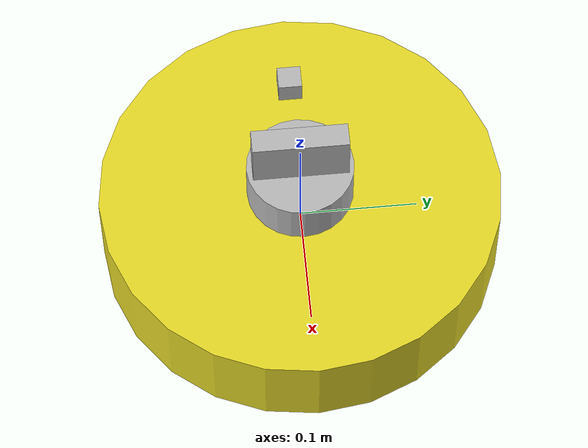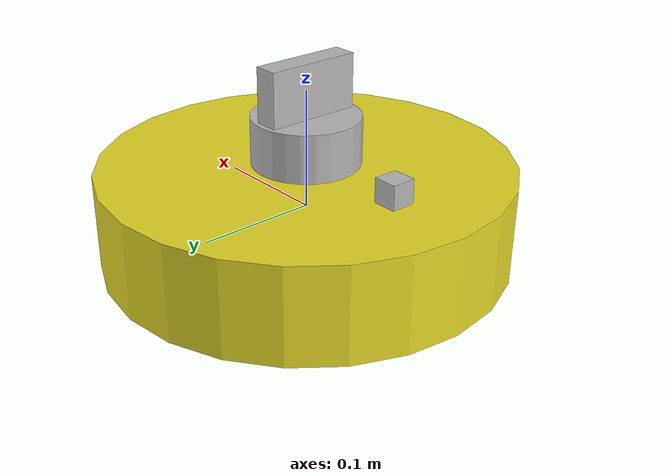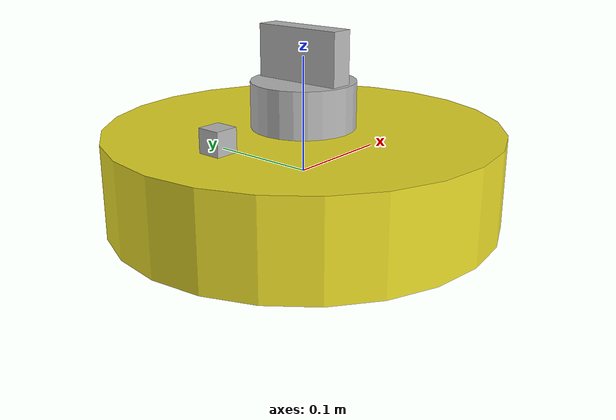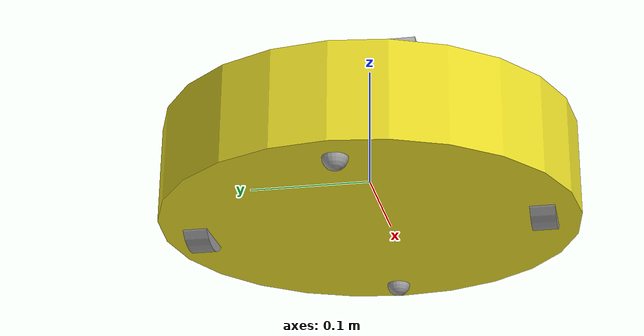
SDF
<sdf version='1.6'>
  <model name='iRobot'>
    <link name='base_link'>
      <pose frame=''>0 0 0 0 -0 0</pose>
      <inertial>
        <pose frame=''>-1e-05 0 2e-06 0 -0 0</pose>
        <mass>10.0031</mass>
        <inertia>
          <ixx>0.425046</ixx>
          <ixy>0</ixy>
          <ixz>4.99979e-06</ixz>
          <iyy>0.425016</iyy>
          <iyz>-4.08016e-18</iyz>
          <izz>0.850052</izz>
        </inertia>
      </inertial>
      <collision name='base_link_fixed_joint_lump__chassis_collision'>
        <pose frame=''>0 0 0 0 -0 0</pose>
        <geometry>
          <cylinder>
            <length>0.08</length>
            <radius>0.17</radius>
          </cylinder>
        </geometry>
        <surface>
          <contact>
            <ode/>
          </contact>
          <friction>
            <ode/>
          </friction>
        </surface>
      </collision>
      <collision name='base_link_fixed_joint_lump__left_axis_collision_1'>
        <pose frame=''>0 0.14 -0.02 -1.5708 0 0</pose>
        <geometry>
          <cylinder>
            <length>0.02</length>
            <radius>0.0025</radius>
          </cylinder>
        </geometry>
      </collision>
      <collision name='base_link_fixed_joint_lump__right_axis_collision_2'>
        <pose frame=''>0 -0.14 -0.02 -1.5708 0 0</pose>
        <geometry>
          <cylinder>
            <length>0.02</length>
            <radius>0.0025</radius>
          </cylinder>
        </geometry>
      </collision>
      <collision name='base_link_fixed_joint_lump__camera_link_collision_3'>
        <pose frame=''>0 0 0.1 0 -0 0</pose>
        <geometry>
          <box>
            <size>0.02 0.08 0.05</size>
          </box>
        </geometry>
        <surface>
          <contact>
            <ode/>
          </contact>
          <friction>
            <ode/>
          </friction>
        </surface>
      </collision>
      <collision name='base_link_fixed_joint_lump__hokuyo_laser_link_collision_4'>
        <pose frame=''>0 0 0.06 0 -0 0</pose>
        <geometry>
          <cylinder>
            <length>0.04</length>
            <radius>0.045</radius>
          </cylinder>
        </geometry>
        <surface>
          <contact>
            <ode/>
          </contact>
          <friction>
            <ode/>
          </friction>
        </surface>
      </collision>
      <collision name='base_link_fixed_joint_lump__imu_sensor_link_collision_5'>
        <pose frame=''>-0.1 0 0.05 0 -0 0</pose>
        <geometry>
          <box>
            <size>0.02 0.02 0.02</size>
          </box>
        </geometry>
        <surface>
          <contact>
            <ode/>
          </contact>
          <friction>
            <ode/>
          </friction>
        </surface>
      </collision>
      <visual name='base_link_fixed_joint_lump__chassis_visual'>
        <pose frame=''>0 0 0 0 -0 0</pose>
        <geometry>
          <cylinder>
            <length>0.08</length>
            <radius>0.17</radius>
          </cylinder>
        </geometry>
        <material>
          <script>
            <name>Gazebo/Yellow</name>
            <uri>file://media/materials/scripts/gazebo.material</uri>
          </script>
        </material>
      </visual>
      <visual name='base_link_fixed_joint_lump__left_axis_visual_1'>
        <pose frame=''>0 0.14 -0.02 -1.5708 0 0</pose>
        <geometry>
          <cylinder>
            <length>0.02</length>
            <radius>0.0025</radius>
          </cylinder>
        </geometry>
      </visual>
      <visual name='base_link_fixed_joint_lump__right_axis_visual_2'>
        <pose frame=''>0 -0.14 -0.02 -1.5708 0 0</pose>
        <geometry>
          <cylinder>
            <length>0.02</length>
            <radius>0.0025</radius>
          </cylinder>
        </geometry>
      </visual>
      <visual name='base_link_fixed_joint_lump__camera_link_visual_3'>
        <pose frame=''>0 0 0.1 0 -0 0</pose>
        <geometry>
          <box>
            <size>0.02 0.08 0.05</size>
          </box>
        </geometry>
        <material>
          <script>
            <uri>__default__</uri>
            <name>__default__</name>
          </script>
        </material>
      </visual>
      <visual name='base_link_fixed_joint_lump__hokuyo_laser_link_visual_4'>
        <pose frame=''>0 0 0.06 0 -0 0</pose>
        <geometry>
          <cylinder>
            <length>0.04</length>
            <radius>0.045</radius>
          </cylinder>
        </geometry>
        <material>
          <script>
            <uri>__default__</uri>
            <name>__default__</name>
          </script>
        </material>
      </visual>
      <visual name='base_link_fixed_joint_lump__imu_sensor_link_visual_5'>
        <pose frame=''>-0.1 0 0.05 0 -0 0</pose>
        <geometry>
          <box>
            <size>0.02 0.02 0.02</size>
          </box>
        </geometry>
        <material>
          <script>
            <uri>__default__</uri>
            <name>__default__</name>
          </script>
        </material>
      </visual>
      <velocity_decay/>
      <velocity_decay/>
      <velocity_decay/>
      <sensor name='camera' type='camera'>
        <update_rate>30</update_rate>
        <camera name='head'>
          <horizontal_fov>1.39626</horizontal_fov>
          <image>
            <width>800</width>
            <height>600</height>
            <format>R8G8B8</format>
          </image>
          <clip>
            <near>0.02</near>
            <far>300</far>
          </clip>
          <noise>
            <type>gaussian</type>
            <mean>0</mean>
            <stddev>0.007</stddev>
          </noise>
        </camera>
        <plugin name='camera_controller' filename='libgazebo_ros_camera.so'>
          <alwaysOn>true</alwaysOn>
          <updateRate>0.0</updateRate>
          <cameraName>iRobot/camera</cameraName>
          <imageTopicName>image_raw</imageTopicName>
          <cameraInfoTopicName>camera_info</cameraInfoTopicName>
          <frameName>camera_link</frameName>
          <hackBaseline>0.07</hackBaseline>
          <distortionK1>0.0</distortionK1>
          <distortionK2>0.0</distortionK2>
          <distortionK3>0.0</distortionK3>
          <distortionT1>0.0</distortionT1>
          <distortionT2>0.0</distortionT2>
        </plugin>
        <pose frame=''>0 0 0.1 0 -0 0</pose>
      </sensor>
      <gravity>1</gravity>
      <velocity_decay/>
      <gravity>1</gravity>
      <sensor name='head_hokuyo_sensor' type='ray'>
        <visualize>1</visualize>
        <update_rate>40</update_rate>
        <ray>
          <scan>
            <horizontal>
              <samples>360</samples>
              <resolution>1</resolution>
              <min_angle>-3.14159</min_angle>
              <max_angle>3.14159</max_angle>
            </horizontal>
          </scan>
          <range>
            <min>0.2</min>
            <max>40</max>
            <resolution>0.025</resolution>
          </range>
          <noise>
            <type>gaussian</type>
            <mean>0</mean>
            <stddev>0</stddev>
          </noise>
        </ray>
        <plugin name='gazebo_ros_head_hokuyo_controller' filename='libgazebo_ros_laser.so'>
          <robotNamespace/>
          <topicName>laser_scan</topicName>
          <frameName>hokuyo_laser_link</frameName>
        </plugin>
        <pose frame=''>0 0 0.06 0 -0 0</pose>
      </sensor>
      <gravity>1</gravity>
      <velocity_decay/>
      <self_collide>0</self_collide>
      <gravity>1</gravity>
      <sensor name='imu_sensor' type='imu'>
        <always_on>1</always_on>
        <update_rate>1000</update_rate>
        <visualize>1</visualize>
        <topic>__default_topic__</topic>
        <plugin name='imu_plugin' filename='libgazebo_ros_imu_sensor.so'>
          <topicName>imu_data</topicName>
          <bodyName>imu_sensor_link</bodyName>
          <updateRateHZ>10.0</updateRateHZ>
          <gaussianNoise>0.0</gaussianNoise>
          <xyzOffset>0 0 0</xyzOffset>
          <rpyOffset>0 0 0</rpyOffset>
        </plugin>
        <pose frame=''>-0.1 0 0.05 0 -0 0</pose>
      </sensor>
    </link>
    <link name='left_wheel_link'>
      <pose frame=''>0 0.14 -0.02 0 -0 0</pose>
      <inertial>
        <pose frame=''>0 0.01 0 -1.5708 0 0</pose>
        <mass>0.5</mass>
        <inertia>
          <ixx>0.00375</ixx>
          <ixy>0</ixy>
          <ixz>0</ixz>
          <iyy>0.00375</iyy>
          <iyz>0</iyz>
          <izz>0.00125</izz>
        </inertia>
      </inertial>
      <collision name='left_wheel_link_collision'>
        <pose frame=''>0 0 0 -1.5708 0 0</pose>
        <geometry>
          <cylinder>
            <length>0.02</length>
            <radius>0.03</radius>
          </cylinder>
        </geometry>
        <surface>
          <contact>
            <ode>
              <kp>1e+07</kp>
              <kd>1</kd>
              <min_depth>0.0001</min_depth>
            </ode>
          </contact>
          <friction>
            <ode>
              <mu>50</mu>
              <mu2>10</mu2>
              <fdir1>1 0 0</fdir1>
            </ode>
          </friction>
        </surface>
        <max_contacts>1</max_contacts>
      </collision>
      <visual name='left_wheel_link_visual'>
        <pose frame=''>0 0 0 -1.5708 0 0</pose>
        <geometry>
          <cylinder>
            <length>0.02</length>
            <radius>0.03</radius>
          </cylinder>
        </geometry>
        <material>
          <script>
            <name>Gazebo/Grey</name>
            <uri>file://media/materials/scripts/gazebo.material</uri>
          </script>
        </material>
      </visual>
      <gravity>1</gravity>
      <velocity_decay/>
      <self_collide>0</self_collide>
      <gravity>1</gravity>
    </link>
    <joint name='left_wheel_rot_joint' type='revolute'>
      <child>left_wheel_link</child>
      <parent>base_link</parent>
      <axis>
        <xyz>0 1 0</xyz>
        <limit>
          <lower>-1e+16</lower>
          <upper>1e+16</upper>
        </limit>
        <dynamics>
          <spring_reference>0</spring_reference>
          <spring_stiffness>0</spring_stiffness>
        </dynamics>
        <use_parent_model_frame>1</use_parent_model_frame>
      </axis>
    </joint>
    <link name='right_wheel_link'>
      <pose frame=''>0 -0.14 -0.02 0 -0 0</pose>
      <inertial>
        <pose frame=''>0 0.01 0 -1.5708 0 0</pose>
        <mass>0.5</mass>
        <inertia>
          <ixx>0.00375</ixx>
          <ixy>0</ixy>
          <ixz>0</ixz>
          <iyy>0.00375</iyy>
          <iyz>0</iyz>
          <izz>0.00125</izz>
        </inertia>
      </inertial>
      <collision name='right_wheel_link_collision'>
        <pose frame=''>0 0 0 -1.5708 0 0</pose>
        <geometry>
          <cylinder>
            <length>0.02</length>
            <radius>0.03</radius>
          </cylinder>
        </geometry>
        <surface>
          <contact>
            <ode>
              <kp>1e+07</kp>
              <kd>1</kd>
              <min_depth>0.0001</min_depth>
            </ode>
          </contact>
          <friction>
            <ode>
              <mu>50</mu>
              <mu2>10</mu2>
              <fdir1>1 0 0</fdir1>
            </ode>
          </friction>
        </surface>
        <max_contacts>1</max_contacts>
      </collision>
      <visual name='right_wheel_link_visual'>
        <pose frame=''>0 0 0 -1.5708 0 0</pose>
        <geometry>
          <cylinder>
            <length>0.02</length>
            <radius>0.03</radius>
          </cylinder>
        </geometry>
        <material>
          <script>
            <name>Gazebo/Grey</name>
            <uri>file://media/materials/scripts/gazebo.material</uri>
          </script>
        </material>
      </visual>
      <gravity>1</gravity>
      <velocity_decay/>
      <self_collide>0</self_collide>
      <gravity>1</gravity>
    </link>
    <joint name='right_wheel_rot_joint' type='revolute'>
      <child>right_wheel_link</child>
      <parent>base_link</parent>
      <axis>
        <xyz>0 1 0</xyz>
        <limit>
          <lower>-1e+16</lower>
          <upper>1e+16</upper>
        </limit>
        <dynamics>
          <spring_reference>0</spring_reference>
          <spring_stiffness>0</spring_stiffness>
        </dynamics>
        <use_parent_model_frame>1</use_parent_model_frame>
      </axis>
    </joint>
    <link name='sphere1'>
      <pose frame=''>0.14 0 -0.04 0 -0 0</pose>
      <inertial>
        <pose frame=''>0 0 0 0 -0 0</pose>
        <mass>0.3</mass>
        <inertia>
          <ixx>0.0012</ixx>
          <ixy>0</ixy>
          <ixz>0</ixz>
          <iyy>0.0012</iyy>
          <iyz>0</iyz>
          <izz>0.0012</izz>
        </inertia>
      </inertial>
      <collision name='sphere1_collision'>
        <pose frame=''>0 0 0 0 -0 0</pose>
        <geometry>
          <sphere>
            <radius>0.01</radius>
          </sphere>
        </geometry>
        <surface>
          <contact>
            <ode>
              <kp>1e+07</kp>
              <kd>1</kd>
              <min_depth>0.0001</min_depth>
            </ode>
          </contact>
          <friction>
            <ode>
              <mu>0</mu>
              <mu2>0</mu2>
              <fdir1>1 0 0</fdir1>
            </ode>
          </friction>
        </surface>
        <max_contacts>1</max_contacts>
      </collision>
      <visual name='sphere1_visual'>
        <pose frame=''>0 0 0 0 -0 0</pose>
        <geometry>
          <sphere>
            <radius>0.01</radius>
          </sphere>
        </geometry>
        <material>
          <script>
            <name>Gazebo/Grey</name>
            <uri>file://media/materials/scripts/gazebo.material</uri>
          </script>
        </material>
      </visual>
      <gravity>1</gravity>
      <velocity_decay/>
      <self_collide>0</self_collide>
      <gravity>1</gravity>
    </link>
    <joint name='sphere_joint1' type='revolute'>
      <child>sphere1</child>
      <parent>base_link</parent>
      <axis>
        <xyz>0 0 1</xyz>
        <limit>
          <lower>0</lower>
          <upper>0</upper>
          <effort>100</effort>
          <velocity>100</velocity>
        </limit>
        <dynamics>
          <spring_reference>0</spring_reference>
          <spring_stiffness>0</spring_stiffness>
        </dynamics>
        <use_parent_model_frame>1</use_parent_model_frame>
      </axis>
    </joint>
    <link name='sphere2'>
      <pose frame=''>-0.14 0 -0.04 0 -0 0</pose>
      <inertial>
        <pose frame=''>0 0 0 0 -0 0</pose>
        <mass>0.3</mass>
        <inertia>
          <ixx>0.0012</ixx>
          <ixy>0</ixy>
          <ixz>0</ixz>
          <iyy>0.0012</iyy>
          <iyz>0</iyz>
          <izz>0.0012</izz>
        </inertia>
      </inertial>
      <collision name='sphere2_collision'>
        <pose frame=''>0 0 0 0 -0 0</pose>
        <geometry>
          <sphere>
            <radius>0.01</radius>
          </sphere>
        </geometry>
        <surface>
          <contact>
            <ode>
              <kp>1e+07</kp>
              <kd>1</kd>
              <min_depth>0.0001</min_depth>
            </ode>
          </contact>
          <friction>
            <ode>
              <mu>0</mu>
              <mu2>0</mu2>
              <fdir1>1 0 0</fdir1>
            </ode>
          </friction>
        </surface>
        <max_contacts>1</max_contacts>
      </collision>
      <visual name='sphere2_visual'>
        <pose frame=''>0 0 0 0 -0 0</pose>
        <geometry>
          <sphere>
            <radius>0.01</radius>
          </sphere>
        </geometry>
        <material>
          <script>
            <name>Gazebo/Grey</name>
            <uri>file://media/materials/scripts/gazebo.material</uri>
          </script>
        </material>
      </visual>
      <gravity>1</gravity>
      <velocity_decay/>
      <self_collide>0</self_collide>
      <gravity>1</gravity>
    </link>
    <joint name='sphere_joint2' type='revolute'>
      <child>sphere2</child>
      <parent>base_link</parent>
      <axis>
        <xyz>0 0 1</xyz>
        <limit>
          <lower>0</lower>
          <upper>0</upper>
          <effort>100</effort>
          <velocity>100</velocity>
        </limit>
        <dynamics>
          <spring_reference>0</spring_reference>
          <spring_stiffness>0</spring_stiffness>
        </dynamics>
        <use_parent_model_frame>1</use_parent_model_frame>
      </axis>
    </joint>
    <static>0</static>
    <plugin name='differential_drive_controller' filename='libgazebo_ros_diff_drive.so'>
      <rosDebugLevel>Debug</rosDebugLevel>
      <publishWheelTF>false</publishWheelTF>
      <publishWheelJointState>true</publishWheelJointState>
      <alwaysOn>true</alwaysOn>
      <leftJoint>left_wheel_rot_joint</leftJoint>
      <rightJoint>right_wheel_rot_joint</rightJoint>
      <wheelSeparation>0.28</wheelSeparation>
      <wheelDiameter>0.06</wheelDiameter>
      <torque>20</torque>
      <wheelAcceleration>1.8</wheelAcceleration>
      <commandTopic>cmd_vel</commandTopic>
      <odometryTopic>odom</odometryTopic>
      <odometryFrame>odom</odometryFrame>
      <odometrySource>encoder</odometrySource>
      <robotBaseFrame>base_link</robotBaseFrame>
      <updateRate>10.0</updateRate>
    </plugin>
    <plugin name='joint_state_publisher' filename='libgazebo_ros_joint_state_publisher.so'>
      <jointName>left_wheel_rot_joint, right_wheel_rot_joint</jointName>
      <updateRate>10.0</updateRate>
      <alwaysOn>true</alwaysOn>
    </plugin>
    <plugin name='imu_plugin' filename='libgazebo_ros_imu.so'>
      <bodyName>base_link</bodyName>
      <updateRate>100.0</updateRate>
      <topicName>imu_data</topicName>
      <serviceName>imu_service</serviceName>
      <gaussianNoise>0.1</gaussianNoise>
      <xyzOffset>0 0 0</xyzOffset>
      <rpyOffset>0 0 0</rpyOffset>
    </plugin>
  </model>
</sdf>
